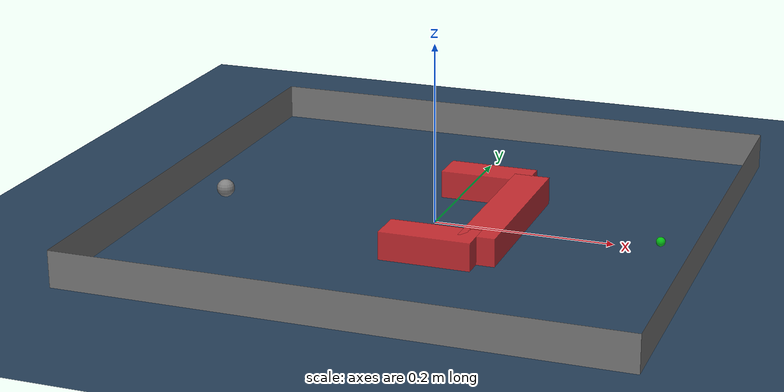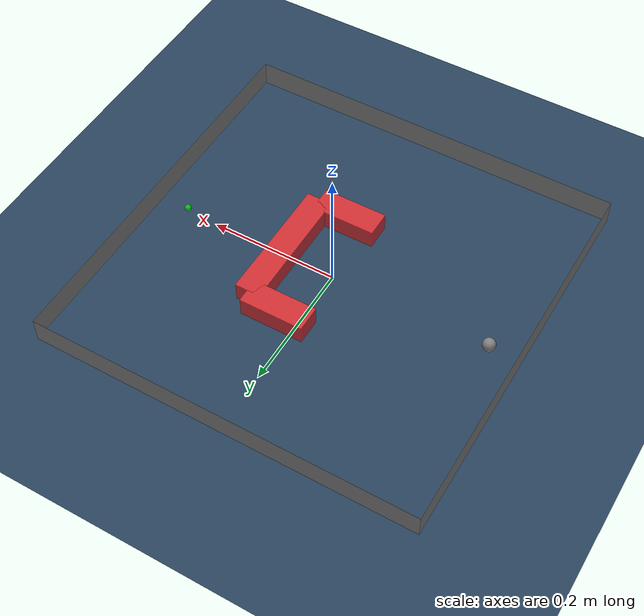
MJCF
<mujoco model="avoid_scene_u_trap">
  <include file="particle_u_trap.xml"/>

  <statistic center="0 0 0" extent="0.9"/>

  <visual>
    <headlight diffuse="0.6 0.6 0.6" ambient="0.3 0.3 0.3" specular="0 0 0"/>
    <rgba haze="0.15 0.25 0.35 1"/>
  </visual>

  <asset>
    <texture type="skybox" builtin="gradient" rgb1="0.3 0.5 0.7" rgb2="0 0 0" width="512" height="3072"/>
    <texture type="2d" name="groundplane" builtin="checker" mark="edge" rgb1="0.2 0.3 0.4" rgb2="0.1 0.2 0.3"
      markrgb="0.8 0.8 0.8" width="300" height="300"/>
    <material name="groundplane" texture="groundplane" texuniform="true" texrepeat="5 5" reflectance="0.2"/>
  </asset>

  <worldbody>
    <light pos="0 0 1"/>
    <geom name="floor" size="0 0 .125" type="plane" material="groundplane"/>
  </worldbody>
</mujoco>

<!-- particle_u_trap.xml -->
<mujoco model="avoid_particle_u_trap">
  <!--
    Planar point-mass with a U-shaped obstacle open toward the start state.
    Based on the MJPC particle task.
  -->
  <option timestep="0.01" iterations="1" ls_iterations="4">
    <flag contact="enable" eulerdamp="enable"/>
  </option>

  <worldbody>
    <body name="goal" mocap="true" pos="0.25 0 0.01" quat="1 0 0 0">
      <geom type="sphere" size=".005" contype="0" conaffinity="0" rgba="0 1 0 .7" />
    </body>

    <body name="obstacle" mocap="true" pos="0.04 0 0.0" quat="1 0 0 0">
      <geom
        name="obstacle_trap_back"
        type="box"
        pos="0.04 0 0"
        size="0.02 0.10 0.03"
        rgba="1 0.2 0.2 0.8"
      />
      <geom
        name="obstacle_trap_top_arm"
        type="box"
        pos="-0.01 0.10 0"
        size="0.05 0.02 0.03"
        rgba="1 0.2 0.2 0.8"
      />
      <geom
        name="obstacle_trap_bottom_arm"
        type="box"
        pos="-0.01 -0.10 0"
        size="0.05 0.02 0.03"
        rgba="1 0.2 0.2 0.8"
      />
    </body>

    <geom name="wall_x" type="plane" pos="-.3 0 .02" zaxis="1 0 0" size=".02 .3 .02" />
    <geom name="wall_y" type="plane" pos="0 -.3 .02" zaxis="0 1 0" size=".3 .02 .02" />
    <geom name="wall_neg_x" type="plane" pos=".3 0 .02" zaxis="-1 0 0" size=".02 .3 .02" />
    <geom name="wall_neg_y" type="plane" pos="0 .3 .02" zaxis="0 -1 0" size=".3 .02 .02" />

    <body name="pointmass" pos="-0.25 0 .01">
      <camera name="cam0" pos="0 -0.3 0.3" xyaxes="1 0 0 0 0.7 0.7" />
      <joint name="root_x" type="slide" pos="0 0 0" axis="1 0 0"
             limited="true" range="-0.1 0.6" damping="1"/>
      <joint name="root_y" type="slide" pos="0 0 0" axis="0 1 0"
             limited="true" range="-0.35 0.35" damping="1"/>
      <geom name="pointmass" type="sphere" size=".01" mass=".3" />
      <site name="pointmass" pos="0 0 0" size="0.01" />
    </body>
  </worldbody>

  <actuator>
    <motor name="x_motor" joint="root_x" gear="1" ctrllimited="true" ctrlrange="-1 1" />
    <motor name="y_motor" joint="root_y" gear="1" ctrllimited="true" ctrlrange="-1 1" />
  </actuator>
</mujoco>
